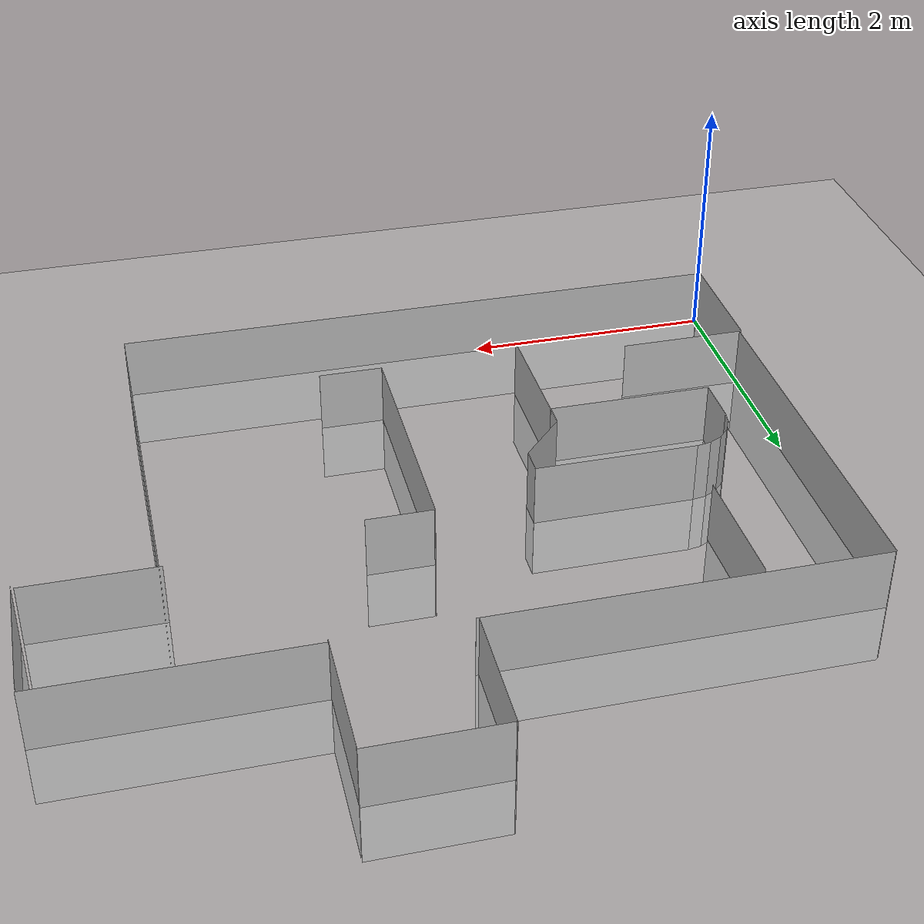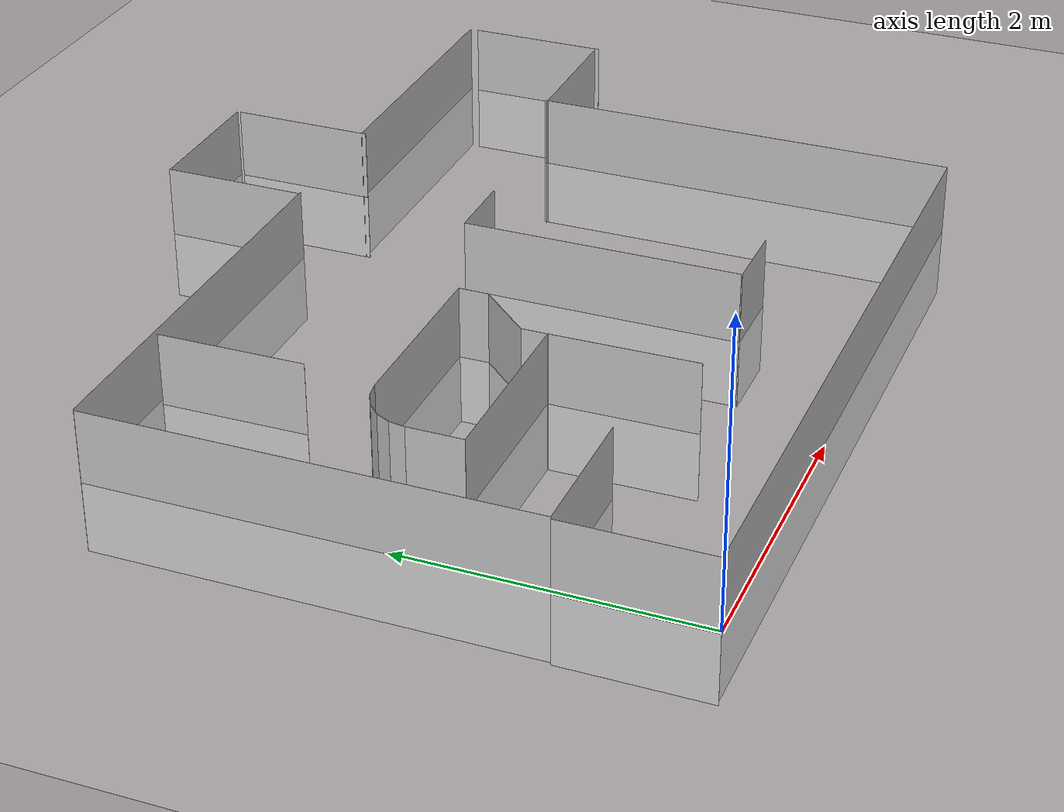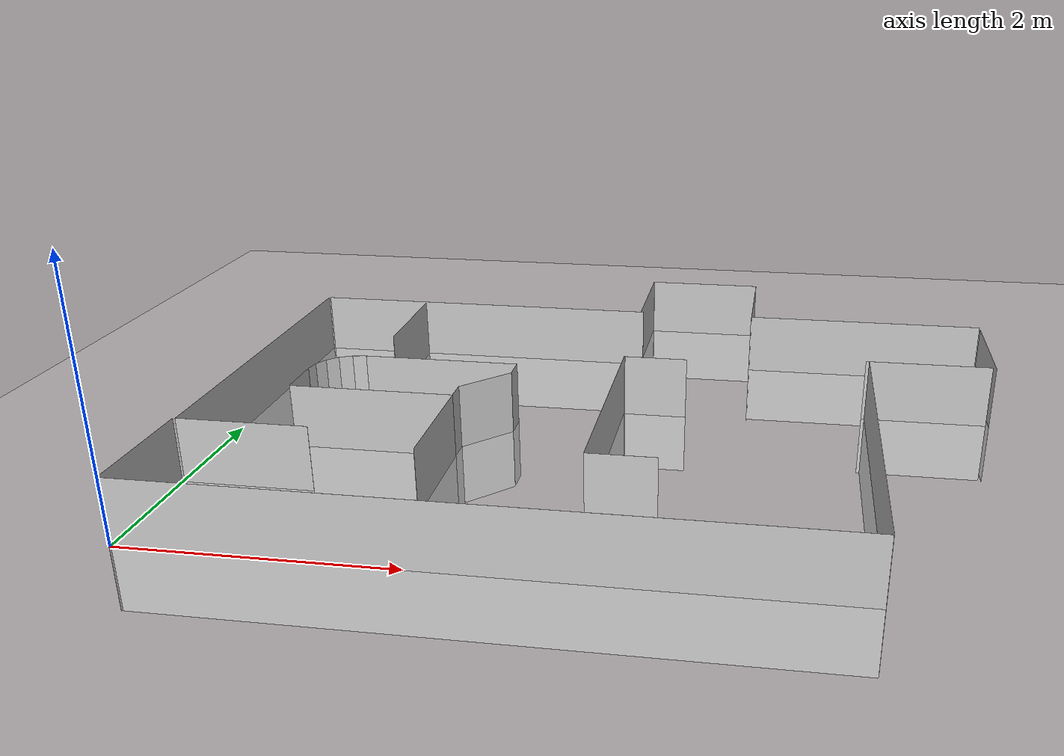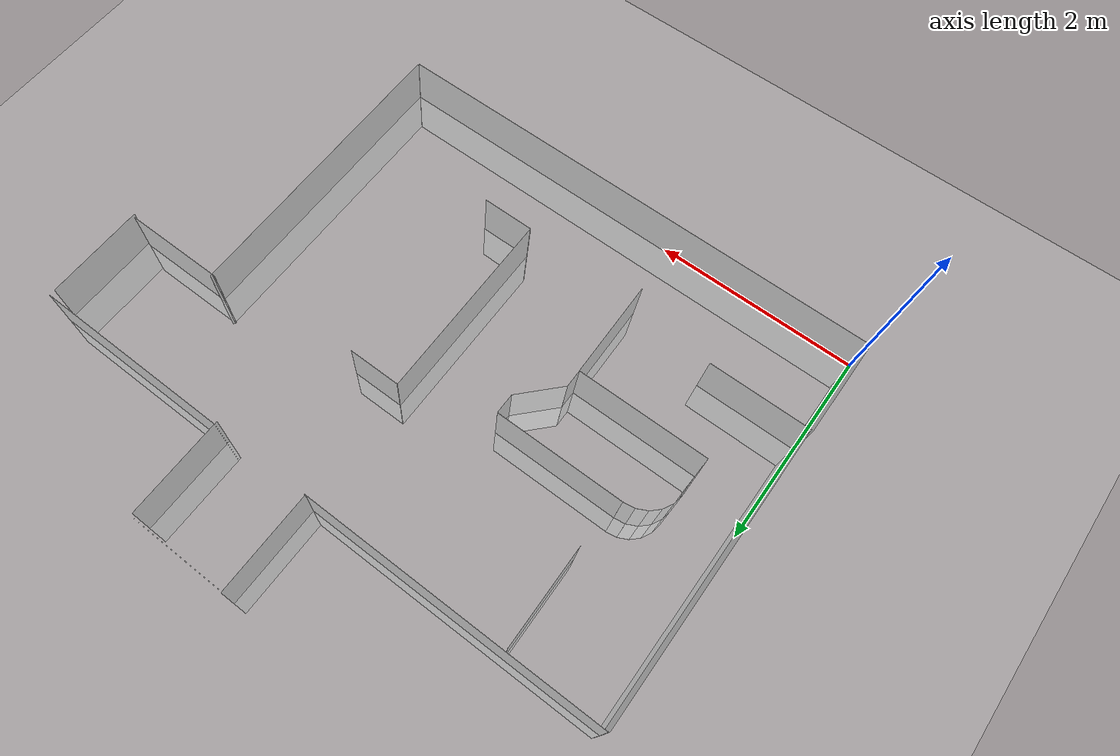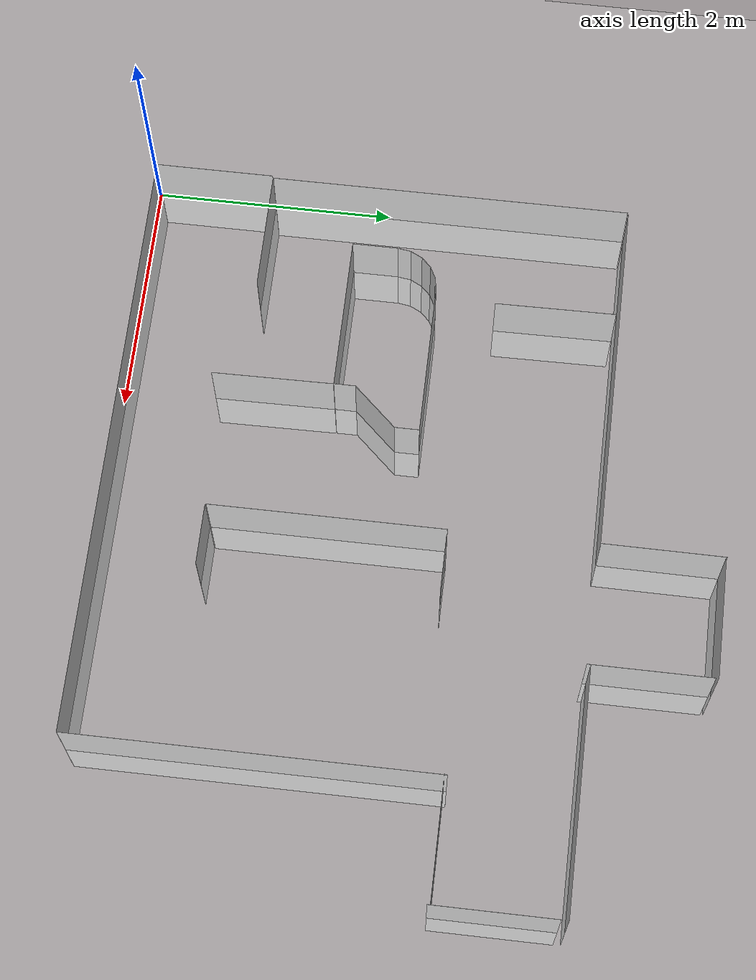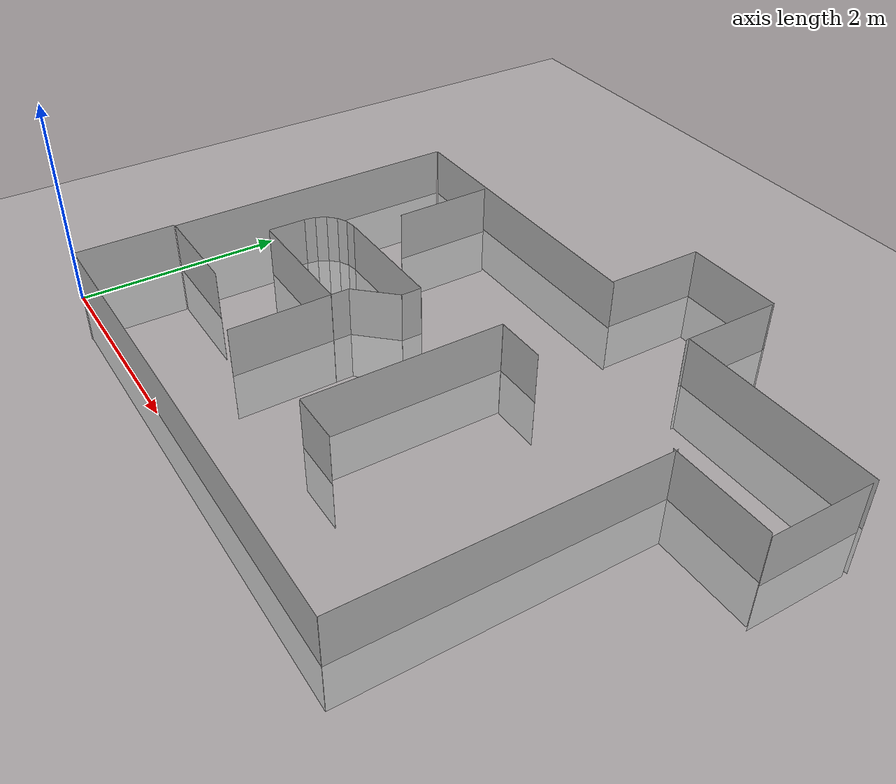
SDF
<sdf version="1.7">
 <world name="default">
  <light name="sun" type="directional">
   <pose>0 0 10 0 -0 0</pose>
   <diffuse>0.8 0.8 0.8 1</diffuse>
   <specular>0.1 0.1 0.1 1</specular>
   <attenuation>
    <range>1000</range>
    <constant>0.9</constant>
    <linear>0.01</linear>
    <quadratic>0.001</quadratic>
   </attenuation>
   <direction>-0.5 0.5 -1</direction>
   <spot><inner_angle>0</inner_angle><outer_angle>0</outer_angle><falloff>0</falloff></spot>
  </light>
  <model name="ground_plane">
   <static>1</static>
   <link name="link">
    <collision name="collision">
     <geometry><plane><normal>0 0 1</normal><size>100 100</size></plane></geometry>
     <surface><friction><ode><mu>100</mu><mu2>50</mu2></ode></friction></surface>
    </collision>
    <visual name="visual">
     <cast_shadows>0</cast_shadows>
     <geometry><plane><normal>0 0 1</normal><size>100 100</size></plane></geometry>
     <material>
      <script><uri>file://media/materials/scripts/gazebo.material</uri><name>Gazebo/Grey</name></script>
     </material>
    </visual>
   </link>
  </model>
  <model name="wall_13">
   <static>1</static>
   <link name="link">
    <collision name="collision"><geometry><box><size>0.381001 0.001 1</size></box></geometry></collision>
    <visual name="visual">
     <geometry><box><size>0.381001 0.001 1</size></box></geometry>
     <material>
      <script><name>Gazebo/White</name><uri>file://media/materials/scripts/gazebo.material</uri></script>
     </material>
    </visual>
   </link>
   <pose>0.558801 1.9431 0 0 -0 1.5708</pose>
  </model>
  <model name="wall_14">
   <static>1</static>
   <link name="link">
    <collision name="collision"><geometry><box><size>0.111256 0.001 1</size></box></geometry></collision>
    <visual name="visual">
     <geometry><box><size>0.111256 0.001 1</size></box></geometry>
     <material>
      <script><name>Gazebo/White</name><uri>file://media/materials/scripts/gazebo.material</uri></script>
     </material>
    </visual>
   </link>
   <pose>0.567503 2.18855 0 0 -0 1.41372</pose>
  </model>
  <model name="wall_15">
   <static>1</static>
   <link name="link">
    <collision name="collision"><geometry><box><size>0.111256 0.001 1</size></box></geometry></collision>
    <visual name="visual">
     <geometry><box><size>0.111256 0.001 1</size></box></geometry>
     <material>
      <script><name>Gazebo/White</name><uri>file://media/materials/scripts/gazebo.material</uri></script>
     </material>
    </visual>
   </link>
   <pose>0.60146 2.29306 0 0 -0 1.09956</pose>
  </model>
  <model name="wall_16">
   <static>1</static>
   <link name="link">
    <collision name="collision"><geometry><box><size>0.111256 0.001 1</size></box></geometry></collision>
    <visual name="visual">
     <geometry><box><size>0.111256 0.001 1</size></box></geometry>
     <material>
      <script><name>Gazebo/White</name><uri>file://media/materials/scripts/gazebo.material</uri></script>
     </material>
    </visual>
   </link>
   <pose>0.66605 2.38196 0 0 -0 0.785398</pose>
  </model>
  <model name="wall_17">
   <static>1</static>
   <link name="link">
    <collision name="collision"><geometry><box><size>0.111256 0.001 1</size></box></geometry></collision>
    <visual name="visual">
     <geometry><box><size>0.111256 0.001 1</size></box></geometry>
     <material>
      <script><name>Gazebo/White</name><uri>file://media/materials/scripts/gazebo.material</uri></script>
     </material>
    </visual>
   </link>
   <pose>0.75495 2.44655 0 0 -0 0.471239</pose>
  </model>
  <model name="wall_18">
   <static>1</static>
   <link name="link">
    <collision name="collision"><geometry><box><size>0.111256 0.001 1</size></box></geometry></collision>
    <visual name="visual">
     <geometry><box><size>0.111256 0.001 1</size></box></geometry>
     <material>
      <script><name>Gazebo/White</name><uri>file://media/materials/scripts/gazebo.material</uri></script>
     </material>
    </visual>
   </link>
   <pose>0.859458 2.4805 0 0 -0 0.15708</pose>
  </model>
  <model name="wall_19">
   <static>1</static>
   <link name="link">
    <collision name="collision"><geometry><box><size>1.27 0.001 1</size></box></geometry></collision>
    <visual name="visual">
     <geometry><box><size>1.27 0.001 1</size></box></geometry>
     <material>
      <script><name>Gazebo/White</name><uri>file://media/materials/scripts/gazebo.material</uri></script>
     </material>
    </visual>
   </link>
   <pose>1.5494 2.48921 0 0 -0 0</pose>
  </model>
  <model name="wall_20">
   <static>1</static>
   <link name="link">
    <collision name="collision"><geometry><box><size>0.2032 0.001 1</size></box></geometry></collision>
    <visual name="visual">
     <geometry><box><size>0.2032 0.001 1</size></box></geometry>
     <material>
      <script><name>Gazebo/White</name><uri>file://media/materials/scripts/gazebo.material</uri></script>
     </material>
    </visual>
   </link>
   <pose>2.1844 2.38761 0 0 0 -1.5708</pose>
  </model>
  <model name="wall_21">
   <static>1</static>
   <link name="link">
    <collision name="collision"><geometry><box><size>0.485267 0.001 1</size></box></geometry></collision>
    <visual name="visual">
     <geometry><box><size>0.485267 0.001 1</size></box></geometry>
     <material>
      <script><name>Gazebo/White</name><uri>file://media/materials/scripts/gazebo.material</uri></script>
     </material>
    </visual>
   </link>
   <pose>2.0193 2.1082 0 0 0 -2.31917</pose>
  </model>
  <model name="wall_22">
   <static>1</static>
   <link name="link">
    <collision name="collision"><geometry><box><size>0.1778 0.001 1</size></box></geometry></collision>
    <visual name="visual">
     <geometry><box><size>0.1778 0.001 1</size></box></geometry>
     <material>
      <script><name>Gazebo/White</name><uri>file://media/materials/scripts/gazebo.material</uri></script>
     </material>
    </visual>
   </link>
   <pose>1.8542 1.8415 0 0 0 -1.5708</pose>
  </model>
  <model name="wall_23">
   <static>1</static>
   <link name="link">
    <collision name="collision"><geometry><box><size>1.2954 0.001 1</size></box></geometry></collision>
    <visual name="visual">
     <geometry><box><size>1.2954 0.001 1</size></box></geometry>
     <material>
      <script><name>Gazebo/White</name><uri>file://media/materials/scripts/gazebo.material</uri></script>
     </material>
    </visual>
   </link>
   <pose>1.2065 1.7526 0 0 0 -3.14159</pose>
  </model>
  <model name="wall_24">
   <static>1</static>
   <link name="link">
    <collision name="collision"><geometry><box><size>0.508001 0.001 1</size></box></geometry></collision>
    <visual name="visual">
     <geometry><box><size>0.508001 0.001 1</size></box></geometry>
     <material>
      <script><name>Gazebo/White</name><uri>file://media/materials/scripts/gazebo.material</uri></script>
     </material>
    </visual>
   </link>
   <pose>3.2752 2.80219 0 0 -0 0</pose>
  </model>
  <model name="wall_25">
   <static>1</static>
   <link name="link">
    <collision name="collision"><geometry><box><size>0.508001 0.001 1</size></box></geometry></collision>
    <visual name="visual">
     <geometry><box><size>0.508001 0.001 1</size></box></geometry>
     <material>
      <script><name>Gazebo/White</name><uri>file://media/materials/scripts/gazebo.material</uri></script>
     </material>
    </visual>
   </link>
   <pose>3.26736 0.865961 0 0 0 -3.14159</pose>
  </model>
  <model name="wall_26">
   <static>1</static>
   <link name="link">
    <collision name="collision"><geometry><box><size>1.9304 0.001 1</size></box></geometry></collision>
    <visual name="visual">
     <geometry><box><size>1.9304 0.001 1</size></box></geometry>
     <material>
      <script><name>Gazebo/White</name><uri>file://media/materials/scripts/gazebo.material</uri></script>
     </material>
    </visual>
   </link>
   <pose>3.01441 1.83895 0 0 -0 1.5708</pose>
  </model>
  <gravity>0 0 -9.8</gravity>
  <magnetic_field>6e-06 2.3e-05 -4.2e-05</magnetic_field>
  <atmosphere type="adiabatic"/>
  <physics name="default_physics" default="0" type="ode">
   <max_step_size>0.001</max_step_size>
   <real_time_factor>1</real_time_factor>
   <real_time_update_rate>1000</real_time_update_rate>
  </physics>
  <scene><ambient>0.4 0.4 0.4 1</ambient><background>0.7 0.7 0.7 1</background><shadows>1</shadows></scene>
  <spherical_coordinates>
   <surface_model>EARTH_WGS84</surface_model>
   <latitude_deg>0</latitude_deg>
   <longitude_deg>0</longitude_deg>
   <elevation>0</elevation>
   <heading_deg>0</heading_deg>
  </spherical_coordinates>
  <model name="wall_0">
   <link name="link">
    <inertial>
     <mass>1</mass>
     <inertia><ixx>1</ixx><ixy>0</ixy><ixz>0</ixz><iyy>1</iyy><iyz>0</iyz><izz>1</izz></inertia>
    </inertial>
    <visual name="visual">
     <geometry><box><size>3 0.001 1</size></box></geometry>
     <material>
      <script><name>Gazebo/White</name><uri>file://media/materials/scripts/gazebo.material</uri></script>
      <shader type="pixel"><normal_map>__default__</normal_map></shader>
      <ambient>1 1 1 1</ambient>
      <diffuse>1 1 1 1</diffuse>
      <specular>0 0 0 1</specular>
      <emissive>0 0 0 1</emissive>
     </material>
    </visual>
    <collision name="collision">
     <geometry><box><size>3 0.001 1</size></box></geometry>
     <surface>
      <friction>
       <ode><mu>1</mu><mu2>1</mu2><fdir1>0 0 0</fdir1><slip1>0</slip1><slip2>0</slip2></ode>
       <torsional>
        <coefficient>1</coefficient>
        <patch_radius>0</patch_radius>
        <surface_radius>0</surface_radius>
        <use_patch_radius>1</use_patch_radius>
        <ode><slip>0</slip></ode>
       </torsional>
      </friction>
      <bounce><restitution_coefficient>0</restitution_coefficient><threshold>1e+06</threshold></bounce>
      <contact>
       <collide_without_contact>0</collide_without_contact>
       <collide_without_contact_bitmask>1</collide_without_contact_bitmask>
       <collide_bitmask>1</collide_bitmask>
       <ode>
        <soft_cfm>0</soft_cfm>
        <soft_erp>0.2</soft_erp>
        <kp>1e+13</kp>
        <kd>1</kd>
        <max_vel>0.01</max_vel>
        <min_depth>0</min_depth>
       </ode>
       <bullet>
        <split_impulse>1</split_impulse>
        <split_impulse_penetration_threshold>-0.01</split_impulse_penetration_threshold>
        <soft_cfm>0</soft_cfm>
        <soft_erp>0.2</soft_erp>
        <kp>1e+13</kp>
        <kd>1</kd>
       </bullet>
      </contact>
     </surface>
    </collision>
   </link>
   <static>1</static>
   <pose>0.009337 2.51002 0 0 -0 1.5708</pose>
  </model>
  <model name="wall_24_clone_0">
   <link name="link">
    <inertial>
     <mass>1</mass>
     <inertia><ixx>1</ixx><ixy>0</ixy><ixz>0</ixz><iyy>1</iyy><iyz>0</iyz><izz>1</izz></inertia>
    </inertial>
    <visual name="visual">
     <geometry><box><size>1 0.001 1</size></box></geometry>
     <material>
      <script><name>Gazebo/White</name><uri>file://media/materials/scripts/gazebo.material</uri></script>
      <shader type="pixel"><normal_map>__default__</normal_map></shader>
      <ambient>1 1 1 1</ambient>
      <diffuse>1 1 1 1</diffuse>
      <specular>0 0 0 1</specular>
      <emissive>0 0 0 1</emissive>
     </material>
    </visual>
    <collision name="collision">
     <geometry><box><size>1 0.001 1</size></box></geometry>
     <surface>
      <friction>
       <ode><mu>1</mu><mu2>1</mu2><fdir1>0 0 0</fdir1><slip1>0</slip1><slip2>0</slip2></ode>
       <torsional>
        <coefficient>1</coefficient>
        <patch_radius>0</patch_radius>
        <surface_radius>0</surface_radius>
        <use_patch_radius>1</use_patch_radius>
        <ode><slip>0</slip></ode>
       </torsional>
      </friction>
      <bounce><restitution_coefficient>0</restitution_coefficient><threshold>1e+06</threshold></bounce>
      <contact>
       <collide_without_contact>0</collide_without_contact>
       <collide_without_contact_bitmask>1</collide_without_contact_bitmask>
       <collide_bitmask>1</collide_bitmask>
       <ode>
        <soft_cfm>0</soft_cfm>
        <soft_erp>0.2</soft_erp>
        <kp>1e+13</kp>
        <kd>1</kd>
        <max_vel>0.01</max_vel>
        <min_depth>0</min_depth>
       </ode>
       <bullet>
        <split_impulse>1</split_impulse>
        <split_impulse_penetration_threshold>-0.01</split_impulse_penetration_threshold>
        <soft_cfm>0</soft_cfm>
        <soft_erp>0.2</soft_erp>
        <kp>1e+13</kp>
        <kd>1</kd>
       </bullet>
      </contact>
     </surface>
    </collision>
   </link>
   <static>1</static>
   <pose>3.50536 5.01022 0 0 -0 0</pose>
  </model>
  <model name="wall_24_clone_0_clone">
   <link name="link">
    <inertial>
     <mass>1</mass>
     <inertia><ixx>1</ixx><ixy>0</ixy><ixz>0</ixz><iyy>1</iyy><iyz>0</iyz><izz>1</izz></inertia>
    </inertial>
    <visual name="visual">
     <geometry><box><size>1 0.001 1</size></box></geometry>
     <material>
      <script><name>Gazebo/White</name><uri>file://media/materials/scripts/gazebo.material</uri></script>
      <shader type="pixel"><normal_map>__default__</normal_map></shader>
      <ambient>1 1 1 1</ambient>
      <diffuse>1 1 1 1</diffuse>
      <specular>0 0 0 1</specular>
      <emissive>0 0 0 1</emissive>
     </material>
    </visual>
    <collision name="collision">
     <geometry><box><size>1 0.001 1</size></box></geometry>
     <surface>
      <friction>
       <ode><mu>1</mu><mu2>1</mu2><fdir1>0 0 0</fdir1><slip1>0</slip1><slip2>0</slip2></ode>
       <torsional>
        <coefficient>1</coefficient>
        <patch_radius>0</patch_radius>
        <surface_radius>0</surface_radius>
        <use_patch_radius>1</use_patch_radius>
        <ode><slip>0</slip></ode>
       </torsional>
      </friction>
      <bounce><restitution_coefficient>0</restitution_coefficient><threshold>1e+06</threshold></bounce>
      <contact>
       <collide_without_contact>0</collide_without_contact>
       <collide_without_contact_bitmask>1</collide_without_contact_bitmask>
       <collide_bitmask>1</collide_bitmask>
       <ode>
        <soft_cfm>0</soft_cfm>
        <soft_erp>0.2</soft_erp>
        <kp>1e+13</kp>
        <kd>1</kd>
        <max_vel>0.01</max_vel>
        <min_depth>0</min_depth>
       </ode>
       <bullet>
        <split_impulse>1</split_impulse>
        <split_impulse_penetration_threshold>-0.01</split_impulse_penetration_threshold>
        <soft_cfm>0</soft_cfm>
        <soft_erp>0.2</soft_erp>
        <kp>1e+13</kp>
        <kd>1</kd>
       </bullet>
      </contact>
     </surface>
    </collision>
   </link>
   <static>1</static>
   <pose>2.99912 4.51951 0 0 -0 1.56615</pose>
  </model>
  <model name="wall_24_clone_0_clone_clone">
   <link name="link">
    <inertial>
     <mass>1</mass>
     <inertia><ixx>1</ixx><ixy>0</ixy><ixz>0</ixz><iyy>1</iyy><iyz>0</iyz><izz>1</izz></inertia>
    </inertial>
    <visual name="visual">
     <geometry><box><size>1 0.001 1</size></box></geometry>
     <material>
      <script><name>Gazebo/White</name><uri>file://media/materials/scripts/gazebo.material</uri></script>
      <shader type="pixel"><normal_map>__default__</normal_map></shader>
      <ambient>1 1 1 1</ambient>
      <diffuse>1 1 1 1</diffuse>
      <specular>0 0 0 1</specular>
      <emissive>0 0 0 1</emissive>
     </material>
    </visual>
    <collision name="collision">
     <geometry><box><size>1 0.001 1</size></box></geometry>
     <surface>
      <friction>
       <ode><mu>1</mu><mu2>1</mu2><fdir1>0 0 0</fdir1><slip1>0</slip1><slip2>0</slip2></ode>
       <torsional>
        <coefficient>1</coefficient>
        <patch_radius>0</patch_radius>
        <surface_radius>0</surface_radius>
        <use_patch_radius>1</use_patch_radius>
        <ode><slip>0</slip></ode>
       </torsional>
      </friction>
      <bounce><restitution_coefficient>0</restitution_coefficient><threshold>1e+06</threshold></bounce>
      <contact>
       <collide_without_contact>0</collide_without_contact>
       <collide_without_contact_bitmask>1</collide_without_contact_bitmask>
       <collide_bitmask>1</collide_bitmask>
       <ode>
        <soft_cfm>0</soft_cfm>
        <soft_erp>0.2</soft_erp>
        <kp>1e+13</kp>
        <kd>1</kd>
        <max_vel>0.01</max_vel>
        <min_depth>0</min_depth>
       </ode>
       <bullet>
        <split_impulse>1</split_impulse>
        <split_impulse_penetration_threshold>-0.01</split_impulse_penetration_threshold>
        <soft_cfm>0</soft_cfm>
        <soft_erp>0.2</soft_erp>
        <kp>1e+13</kp>
        <kd>1</kd>
       </bullet>
      </contact>
     </surface>
    </collision>
   </link>
   <static>1</static>
   <pose>4.00434 4.48937 0 0 -0 1.56928</pose>
  </model>
  <model name="wall_24_clone_0_clone_clone_0">
   <link name="link">
    <inertial>
     <mass>1</mass>
     <inertia><ixx>1</ixx><ixy>0</ixy><ixz>0</ixz><iyy>1</iyy><iyz>0</iyz><izz>1</izz></inertia>
    </inertial>
    <visual name="visual">
     <geometry><box><size>1 0.001 1</size></box></geometry>
     <material>
      <script><name>Gazebo/White</name><uri>file://media/materials/scripts/gazebo.material</uri></script>
      <shader type="pixel"><normal_map>__default__</normal_map></shader>
      <ambient>1 1 1 1</ambient>
      <diffuse>1 1 1 1</diffuse>
      <specular>0 0 0 1</specular>
      <emissive>0 0 0 1</emissive>
     </material>
    </visual>
    <collision name="collision">
     <geometry><box><size>1 0.001 1</size></box></geometry>
     <surface>
      <friction>
       <ode><mu>1</mu><mu2>1</mu2><fdir1>0 0 0</fdir1><slip1>0</slip1><slip2>0</slip2></ode>
       <torsional>
        <coefficient>1</coefficient>
        <patch_radius>0</patch_radius>
        <surface_radius>0</surface_radius>
        <use_patch_radius>1</use_patch_radius>
        <ode><slip>0</slip></ode>
       </torsional>
      </friction>
      <bounce><restitution_coefficient>0</restitution_coefficient><threshold>1e+06</threshold></bounce>
      <contact>
       <collide_without_contact>0</collide_without_contact>
       <collide_without_contact_bitmask>1</collide_without_contact_bitmask>
       <collide_bitmask>1</collide_bitmask>
       <ode>
        <soft_cfm>0</soft_cfm>
        <soft_erp>0.2</soft_erp>
        <kp>1e+13</kp>
        <kd>1</kd>
        <max_vel>0.01</max_vel>
        <min_depth>0</min_depth>
       </ode>
       <bullet>
        <split_impulse>1</split_impulse>
        <split_impulse_penetration_threshold>-0.01</split_impulse_penetration_threshold>
        <soft_cfm>0</soft_cfm>
        <soft_erp>0.2</soft_erp>
        <kp>1e+13</kp>
        <kd>1</kd>
       </bullet>
      </contact>
     </surface>
    </collision>
   </link>
   <static>1</static>
   <pose>5.99654 3.46269 0 0 -0 1.56928</pose>
  </model>
  <model name="wall_24_clone_0_clone_clone_1">
   <link name="link">
    <inertial>
     <mass>1</mass>
     <inertia><ixx>1</ixx><ixy>0</ixy><ixz>0</ixz><iyy>1</iyy><iyz>0</iyz><izz>1</izz></inertia>
    </inertial>
    <visual name="visual">
     <geometry><box><size>1 0.001 1</size></box></geometry>
     <material>
      <script><name>Gazebo/White</name><uri>file://media/materials/scripts/gazebo.material</uri></script>
      <shader type="pixel"><normal_map>__default__</normal_map></shader>
      <ambient>1 1 1 1</ambient>
      <diffuse>1 1 1 1</diffuse>
      <specular>0 0 0 1</specular>
      <emissive>0 0 0 1</emissive>
     </material>
    </visual>
    <collision name="collision">
     <geometry><box><size>1 0.001 1</size></box></geometry>
     <surface>
      <friction>
       <ode><mu>1</mu><mu2>1</mu2><fdir1>0 0 0</fdir1><slip1>0</slip1><slip2>0</slip2></ode>
       <torsional>
        <coefficient>1</coefficient>
        <patch_radius>0</patch_radius>
        <surface_radius>0</surface_radius>
        <use_patch_radius>1</use_patch_radius>
        <ode><slip>0</slip></ode>
       </torsional>
      </friction>
      <bounce><restitution_coefficient>0</restitution_coefficient><threshold>1e+06</threshold></bounce>
      <contact>
       <collide_without_contact>0</collide_without_contact>
       <collide_without_contact_bitmask>1</collide_without_contact_bitmask>
       <collide_bitmask>1</collide_bitmask>
       <ode>
        <soft_cfm>0</soft_cfm>
        <soft_erp>0.2</soft_erp>
        <kp>1e+13</kp>
        <kd>1</kd>
        <max_vel>0.01</max_vel>
        <min_depth>0</min_depth>
       </ode>
       <bullet>
        <split_impulse>1</split_impulse>
        <split_impulse_penetration_threshold>-0.01</split_impulse_penetration_threshold>
        <soft_cfm>0</soft_cfm>
        <soft_erp>0.2</soft_erp>
        <kp>1e+13</kp>
        <kd>1</kd>
       </bullet>
      </contact>
     </surface>
    </collision>
   </link>
   <static>1</static>
   <pose>-0.010166 0.501025 0 0 -0 1.56928</pose>
  </model>
  <model name="wall_24_clone_0_clone_0">
   <link name="link">
    <inertial>
     <mass>1</mass>
     <inertia><ixx>1</ixx><ixy>0</ixy><ixz>0</ixz><iyy>1</iyy><iyz>0</iyz><izz>1</izz></inertia>
    </inertial>
    <visual name="visual">
     <geometry><box><size>1 0.001 1</size></box></geometry>
     <material>
      <script><name>Gazebo/White</name><uri>file://media/materials/scripts/gazebo.material</uri></script>
      <shader type="pixel"><normal_map>__default__</normal_map></shader>
      <ambient>1 1 1 1</ambient>
      <diffuse>1 1 1 1</diffuse>
      <specular>0 0 0 1</specular>
      <emissive>0 0 0 1</emissive>
     </material>
    </visual>
    <collision name="collision">
     <geometry><box><size>1 0.001 1</size></box></geometry>
     <surface>
      <friction>
       <ode><mu>1</mu><mu2>1</mu2><fdir1>0 0 0</fdir1><slip1>0</slip1><slip2>0</slip2></ode>
       <torsional>
        <coefficient>1</coefficient>
        <patch_radius>0</patch_radius>
        <surface_radius>0</surface_radius>
        <use_patch_radius>1</use_patch_radius>
        <ode><slip>0</slip></ode>
       </torsional>
      </friction>
      <bounce><restitution_coefficient>0</restitution_coefficient><threshold>1e+06</threshold></bounce>
      <contact>
       <collide_without_contact>0</collide_without_contact>
       <collide_without_contact_bitmask>1</collide_without_contact_bitmask>
       <collide_bitmask>1</collide_bitmask>
       <ode>
        <soft_cfm>0</soft_cfm>
        <soft_erp>0.2</soft_erp>
        <kp>1e+13</kp>
        <kd>1</kd>
        <max_vel>0.01</max_vel>
        <min_depth>0</min_depth>
       </ode>
       <bullet>
        <split_impulse>1</split_impulse>
        <split_impulse_penetration_threshold>-0.01</split_impulse_penetration_threshold>
        <soft_cfm>0</soft_cfm>
        <soft_erp>0.2</soft_erp>
        <kp>1e+13</kp>
        <kd>1</kd>
       </bullet>
      </contact>
     </surface>
    </collision>
   </link>
   <static>1</static>
   <pose>0.975549 3.48714 0 0 -0 1.58109</pose>
  </model>
  <model name="wall_24_clone_0_clone_1">
   <link name="link">
    <inertial>
     <mass>1</mass>
     <inertia><ixx>1</ixx><ixy>0</ixy><ixz>0</ixz><iyy>1</iyy><iyz>0</iyz><izz>1</izz></inertia>
    </inertial>
    <visual name="visual">
     <geometry><box><size>1 0.001 1</size></box></geometry>
     <material>
      <script><name>Gazebo/White</name><uri>file://media/materials/scripts/gazebo.material</uri></script>
      <shader type="pixel"><normal_map>__default__</normal_map></shader>
      <ambient>1 1 1 1</ambient>
      <diffuse>1 1 1 1</diffuse>
      <specular>0 0 0 1</specular>
      <emissive>0 0 0 1</emissive>
     </material>
    </visual>
    <collision name="collision">
     <geometry><box><size>1 0.001 1</size></box></geometry>
     <surface>
      <friction>
       <ode><mu>1</mu><mu2>1</mu2><fdir1>0 0 0</fdir1><slip1>0</slip1><slip2>0</slip2></ode>
       <torsional>
        <coefficient>1</coefficient>
        <patch_radius>0</patch_radius>
        <surface_radius>0</surface_radius>
        <use_patch_radius>1</use_patch_radius>
        <ode><slip>0</slip></ode>
       </torsional>
      </friction>
      <bounce><restitution_coefficient>0</restitution_coefficient><threshold>1e+06</threshold></bounce>
      <contact>
       <collide_without_contact>0</collide_without_contact>
       <collide_without_contact_bitmask>1</collide_without_contact_bitmask>
       <collide_bitmask>1</collide_bitmask>
       <ode>
        <soft_cfm>0</soft_cfm>
        <soft_erp>0.2</soft_erp>
        <kp>1e+13</kp>
        <kd>1</kd>
        <max_vel>0.01</max_vel>
        <min_depth>0</min_depth>
       </ode>
       <bullet>
        <split_impulse>1</split_impulse>
        <split_impulse_penetration_threshold>-0.01</split_impulse_penetration_threshold>
        <soft_cfm>0</soft_cfm>
        <soft_erp>0.2</soft_erp>
        <kp>1e+13</kp>
        <kd>1</kd>
       </bullet>
      </contact>
     </surface>
    </collision>
   </link>
   <static>1</static>
   <pose>0.504864 1.00782 0 0 -0 0</pose>
  </model>
  <model name="wall_8_clone">
   <link name="link">
    <inertial>
     <mass>1</mass>
     <inertia><ixx>1</ixx><ixy>0</ixy><ixz>0</ixz><iyy>1</iyy><iyz>0</iyz><izz>1</izz></inertia>
    </inertial>
    <visual name="visual">
     <geometry><box><size>3 0.001 1</size></box></geometry>
     <material>
      <script><name>Gazebo/White</name><uri>file://media/materials/scripts/gazebo.material</uri></script>
      <shader type="pixel"><normal_map>__default__</normal_map></shader>
      <ambient>1 1 1 1</ambient>
      <diffuse>1 1 1 1</diffuse>
      <specular>0 0 0 1</specular>
      <emissive>0 0 0 1</emissive>
     </material>
    </visual>
    <collision name="collision">
     <geometry><box><size>3 0.001 1</size></box></geometry>
     <surface>
      <friction>
       <ode><mu>1</mu><mu2>1</mu2><fdir1>0 0 0</fdir1><slip1>0</slip1><slip2>0</slip2></ode>
       <torsional>
        <coefficient>1</coefficient>
        <patch_radius>0</patch_radius>
        <surface_radius>0</surface_radius>
        <use_patch_radius>1</use_patch_radius>
        <ode><slip>0</slip></ode>
       </torsional>
      </friction>
      <bounce><restitution_coefficient>0</restitution_coefficient><threshold>1e+06</threshold></bounce>
      <contact>
       <collide_without_contact>0</collide_without_contact>
       <collide_without_contact_bitmask>1</collide_without_contact_bitmask>
       <collide_bitmask>1</collide_bitmask>
       <ode>
        <soft_cfm>0</soft_cfm>
        <soft_erp>0.2</soft_erp>
        <kp>1e+13</kp>
        <kd>1</kd>
        <max_vel>0.01</max_vel>
        <min_depth>0</min_depth>
       </ode>
       <bullet>
        <split_impulse>1</split_impulse>
        <split_impulse_penetration_threshold>-0.01</split_impulse_penetration_threshold>
        <soft_cfm>0</soft_cfm>
        <soft_erp>0.2</soft_erp>
        <kp>1e+13</kp>
        <kd>1</kd>
       </bullet>
      </contact>
     </surface>
    </collision>
   </link>
   <static>1</static>
   <pose>1.51868 4.0174 0 0 0 -3.14159</pose>
  </model>
  <model name="wall_24_clone">
   <link name="link">
    <inertial>
     <mass>1</mass>
     <inertia><ixx>1</ixx><ixy>0</ixy><ixz>0</ixz><iyy>1</iyy><iyz>0</iyz><izz>1</izz></inertia>
    </inertial>
    <visual name="visual">
     <geometry><box><size>2 0.001 1</size></box></geometry>
     <material>
      <script><name>Gazebo/White</name><uri>file://media/materials/scripts/gazebo.material</uri></script>
      <shader type="pixel"><normal_map>__default__</normal_map></shader>
      <ambient>1 1 1 1</ambient>
      <diffuse>1 1 1 1</diffuse>
      <specular>0 0 0 1</specular>
      <emissive>0 0 0 1</emissive>
     </material>
    </visual>
    <collision name="collision">
     <geometry><box><size>2 0.001 1</size></box></geometry>
     <surface>
      <friction>
       <ode><mu>1</mu><mu2>1</mu2><fdir1>0 0 0</fdir1><slip1>0</slip1><slip2>0</slip2></ode>
       <torsional>
        <coefficient>1</coefficient>
        <patch_radius>0</patch_radius>
        <surface_radius>0</surface_radius>
        <use_patch_radius>1</use_patch_radius>
        <ode><slip>0</slip></ode>
       </torsional>
      </friction>
      <bounce><restitution_coefficient>0</restitution_coefficient><threshold>1e+06</threshold></bounce>
      <contact>
       <collide_without_contact>0</collide_without_contact>
       <collide_without_contact_bitmask>1</collide_without_contact_bitmask>
       <collide_bitmask>1</collide_bitmask>
       <ode>
        <soft_cfm>0</soft_cfm>
        <soft_erp>0.2</soft_erp>
        <kp>1e+13</kp>
        <kd>1</kd>
        <max_vel>0.01</max_vel>
        <min_depth>0</min_depth>
       </ode>
       <bullet>
        <split_impulse>1</split_impulse>
        <split_impulse_penetration_threshold>-0.01</split_impulse_penetration_threshold>
        <soft_cfm>0</soft_cfm>
        <soft_erp>0.2</soft_erp>
        <kp>1e+13</kp>
        <kd>1</kd>
       </bullet>
      </contact>
     </surface>
    </collision>
   </link>
   <static>1</static>
   <pose>4.9992 4.0206 0 0 -0 0</pose>
  </model>
  <model name="wall_24_clone_0_clone_2">
   <link name="link">
    <inertial>
     <mass>1</mass>
     <inertia><ixx>1</ixx><ixy>0</ixy><ixz>0</ixz><iyy>1</iyy><iyz>0</iyz><izz>1</izz></inertia>
    </inertial>
    <visual name="visual">
     <geometry><box><size>1 0.001 1</size></box></geometry>
     <material>
      <script><name>Gazebo/White</name><uri>file://media/materials/scripts/gazebo.material</uri></script>
      <shader type="pixel"><normal_map>__default__</normal_map></shader>
      <ambient>1 1 1 1</ambient>
      <diffuse>1 1 1 1</diffuse>
      <specular>0 0 0 1</specular>
      <emissive>0 0 0 1</emissive>
     </material>
    </visual>
    <collision name="collision">
     <geometry><box><size>1 0.001 1</size></box></geometry>
     <surface>
      <friction>
       <ode><mu>1</mu><mu2>1</mu2><fdir1>0 0 0</fdir1><slip1>0</slip1><slip2>0</slip2></ode>
       <torsional>
        <coefficient>1</coefficient>
        <patch_radius>0</patch_radius>
        <surface_radius>0</surface_radius>
        <use_patch_radius>1</use_patch_radius>
        <ode><slip>0</slip></ode>
       </torsional>
      </friction>
      <bounce><restitution_coefficient>0</restitution_coefficient><threshold>1e+06</threshold></bounce>
      <contact>
       <collide_without_contact>0</collide_without_contact>
       <collide_without_contact_bitmask>1</collide_without_contact_bitmask>
       <collide_bitmask>1</collide_bitmask>
       <ode>
        <soft_cfm>0</soft_cfm>
        <soft_erp>0.2</soft_erp>
        <kp>1e+13</kp>
        <kd>1</kd>
        <max_vel>0.01</max_vel>
        <min_depth>0</min_depth>
       </ode>
       <bullet>
        <split_impulse>1</split_impulse>
        <split_impulse_penetration_threshold>-0.01</split_impulse_penetration_threshold>
        <soft_cfm>0</soft_cfm>
        <soft_erp>0.2</soft_erp>
        <kp>1e+13</kp>
        <kd>1</kd>
       </bullet>
      </contact>
     </surface>
    </collision>
   </link>
   <static>1</static>
   <pose>5.47287 2.98757 0 0 -0 0</pose>
  </model>
  <model name="wall_8">
   <link name="link">
    <inertial>
     <mass>1</mass>
     <inertia><ixx>1</ixx><ixy>0</ixy><ixz>0</ixz><iyy>1</iyy><iyz>0</iyz><izz>1</izz></inertia>
    </inertial>
    <visual name="visual">
     <geometry><box><size>5 0.001 1</size></box></geometry>
     <material>
      <script><name>Gazebo/White</name><uri>file://media/materials/scripts/gazebo.material</uri></script>
      <shader type="pixel"><normal_map>__default__</normal_map></shader>
      <ambient>1 1 1 1</ambient>
      <diffuse>1 1 1 1</diffuse>
      <specular>0 0 0 1</specular>
      <emissive>0 0 0 1</emissive>
     </material>
    </visual>
    <collision name="collision">
     <geometry><box><size>5 0.001 1</size></box></geometry>
     <surface>
      <friction>
       <ode><mu>1</mu><mu2>1</mu2><fdir1>0 0 0</fdir1><slip1>0</slip1><slip2>0</slip2></ode>
       <torsional>
        <coefficient>1</coefficient>
        <patch_radius>0</patch_radius>
        <surface_radius>0</surface_radius>
        <use_patch_radius>1</use_patch_radius>
        <ode><slip>0</slip></ode>
       </torsional>
      </friction>
      <bounce><restitution_coefficient>0</restitution_coefficient><threshold>1e+06</threshold></bounce>
      <contact>
       <collide_without_contact>0</collide_without_contact>
       <collide_without_contact_bitmask>1</collide_without_contact_bitmask>
       <collide_bitmask>1</collide_bitmask>
       <ode>
        <soft_cfm>0</soft_cfm>
        <soft_erp>0.2</soft_erp>
        <kp>1e+13</kp>
        <kd>1</kd>
        <max_vel>0.01</max_vel>
        <min_depth>0</min_depth>
       </ode>
       <bullet>
        <split_impulse>1</split_impulse>
        <split_impulse_penetration_threshold>-0.01</split_impulse_penetration_threshold>
        <soft_cfm>0</soft_cfm>
        <soft_erp>0.2</soft_erp>
        <kp>1e+13</kp>
        <kd>1</kd>
       </bullet>
      </contact>
     </surface>
    </collision>
   </link>
   <static>1</static>
   <pose>2.49769 0.010209 0 0 0 -3.14159</pose>
  </model>
  <model name="wall_0_clone">
   <link name="link">
    <inertial>
     <mass>1</mass>
     <inertia><ixx>1</ixx><ixy>0</ixy><ixz>0</ixz><iyy>1</iyy><iyz>0</iyz><izz>1</izz></inertia>
    </inertial>
    <visual name="visual">
     <geometry><box><size>3 0.001 1</size></box></geometry>
     <material>
      <script><name>Gazebo/White</name><uri>file://media/materials/scripts/gazebo.material</uri></script>
      <shader type="pixel"><normal_map>__default__</normal_map></shader>
      <ambient>1 1 1 1</ambient>
      <diffuse>1 1 1 1</diffuse>
      <specular>0 0 0 1</specular>
      <emissive>0 0 0 1</emissive>
     </material>
    </visual>
    <collision name="collision">
     <geometry><box><size>3 0.001 1</size></box></geometry>
     <surface>
      <friction>
       <ode><mu>1</mu><mu2>1</mu2><fdir1>0 0 0</fdir1><slip1>0</slip1><slip2>0</slip2></ode>
       <torsional>
        <coefficient>1</coefficient>
        <patch_radius>0</patch_radius>
        <surface_radius>0</surface_radius>
        <use_patch_radius>1</use_patch_radius>
        <ode><slip>0</slip></ode>
       </torsional>
      </friction>
      <bounce><restitution_coefficient>0</restitution_coefficient><threshold>1e+06</threshold></bounce>
      <contact>
       <collide_without_contact>0</collide_without_contact>
       <collide_without_contact_bitmask>1</collide_without_contact_bitmask>
       <collide_bitmask>1</collide_bitmask>
       <ode>
        <soft_cfm>0</soft_cfm>
        <soft_erp>0.2</soft_erp>
        <kp>1e+13</kp>
        <kd>1</kd>
        <max_vel>0.01</max_vel>
        <min_depth>0</min_depth>
       </ode>
       <bullet>
        <split_impulse>1</split_impulse>
        <split_impulse_penetration_threshold>-0.01</split_impulse_penetration_threshold>
        <soft_cfm>0</soft_cfm>
        <soft_erp>0.2</soft_erp>
        <kp>1e+13</kp>
        <kd>1</kd>
       </bullet>
      </contact>
     </surface>
    </collision>
   </link>
   <static>1</static>
   <pose>4.99925 1.51163 0 0 -0 1.5708</pose>
  </model>
  <model name="wall_24_clone_0_clone_0_clone">
   <link name="link">
    <inertial>
     <mass>1</mass>
     <inertia><ixx>1</ixx><ixy>0</ixy><ixz>0</ixz><iyy>1</iyy><iyz>0</iyz><izz>1</izz></inertia>
    </inertial>
    <visual name="visual">
     <geometry><box><size>1 0.001 1</size></box></geometry>
     <material>
      <script><name>Gazebo/White</name><uri>file://media/materials/scripts/gazebo.material</uri></script>
      <shader type="pixel"><normal_map>__default__</normal_map></shader>
      <ambient>1 1 1 1</ambient>
      <diffuse>1 1 1 1</diffuse>
      <specular>0 0 0 1</specular>
      <emissive>0 0 0 1</emissive>
     </material>
    </visual>
    <collision name="collision">
     <geometry><box><size>1 0.001 1</size></box></geometry>
     <surface>
      <friction>
       <ode><mu>1</mu><mu2>1</mu2><fdir1>0 0 0</fdir1><slip1>0</slip1><slip2>0</slip2></ode>
       <torsional>
        <coefficient>1</coefficient>
        <patch_radius>0</patch_radius>
        <surface_radius>0</surface_radius>
        <use_patch_radius>1</use_patch_radius>
        <ode><slip>0</slip></ode>
       </torsional>
      </friction>
      <bounce><restitution_coefficient>0</restitution_coefficient><threshold>1e+06</threshold></bounce>
      <contact>
       <collide_without_contact>0</collide_without_contact>
       <collide_without_contact_bitmask>1</collide_without_contact_bitmask>
       <collide_bitmask>1</collide_bitmask>
       <ode>
        <soft_cfm>0</soft_cfm>
        <soft_erp>0.2</soft_erp>
        <kp>1e+13</kp>
        <kd>1</kd>
        <max_vel>0.01</max_vel>
        <min_depth>0</min_depth>
       </ode>
       <bullet>
        <split_impulse>1</split_impulse>
        <split_impulse_penetration_threshold>-0.01</split_impulse_penetration_threshold>
        <soft_cfm>0</soft_cfm>
        <soft_erp>0.2</soft_erp>
        <kp>1e+13</kp>
        <kd>1</kd>
       </bullet>
      </contact>
     </surface>
    </collision>
   </link>
   <static>1</static>
   <pose>1.86089 1.2503 0 0 -0 1.58109</pose>
  </model>
 </world>
</sdf>
